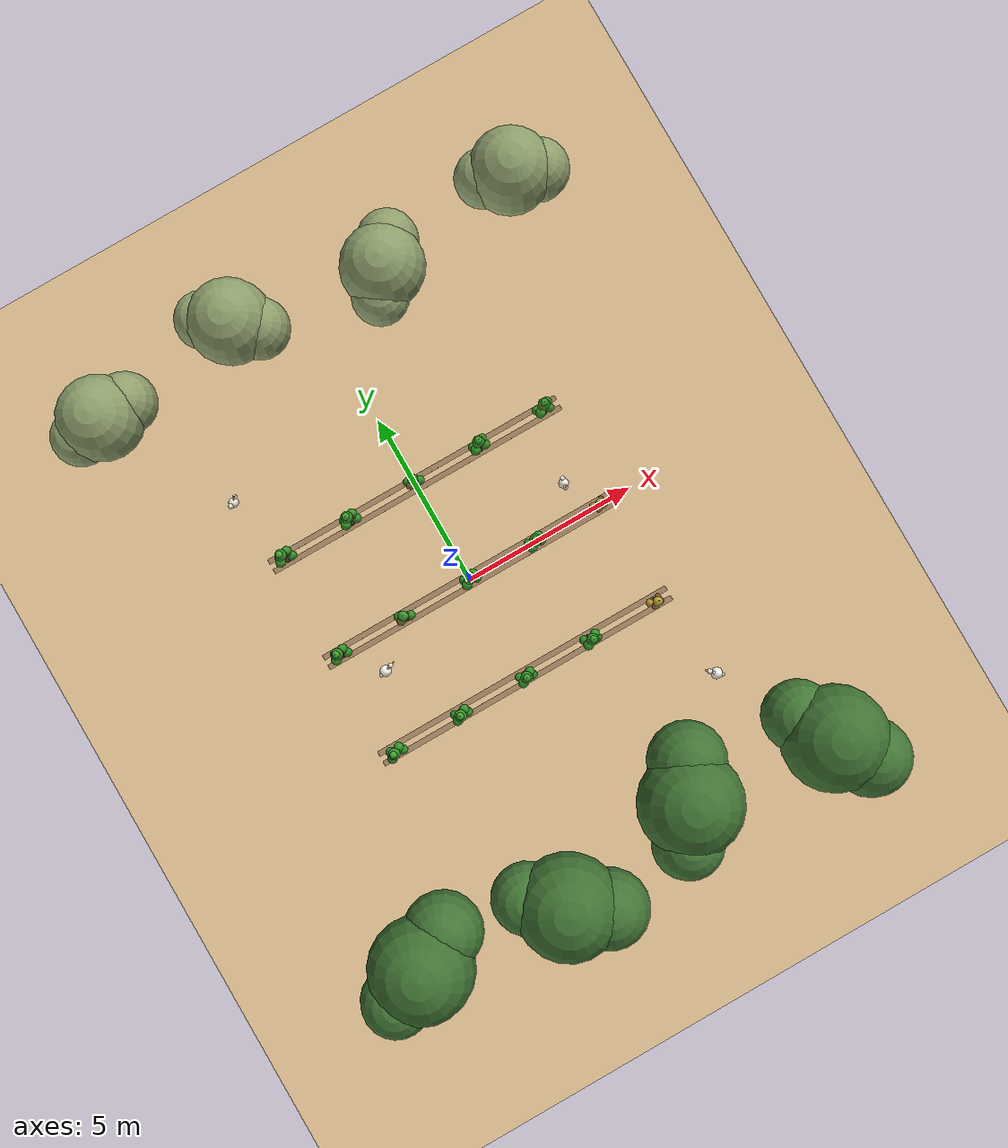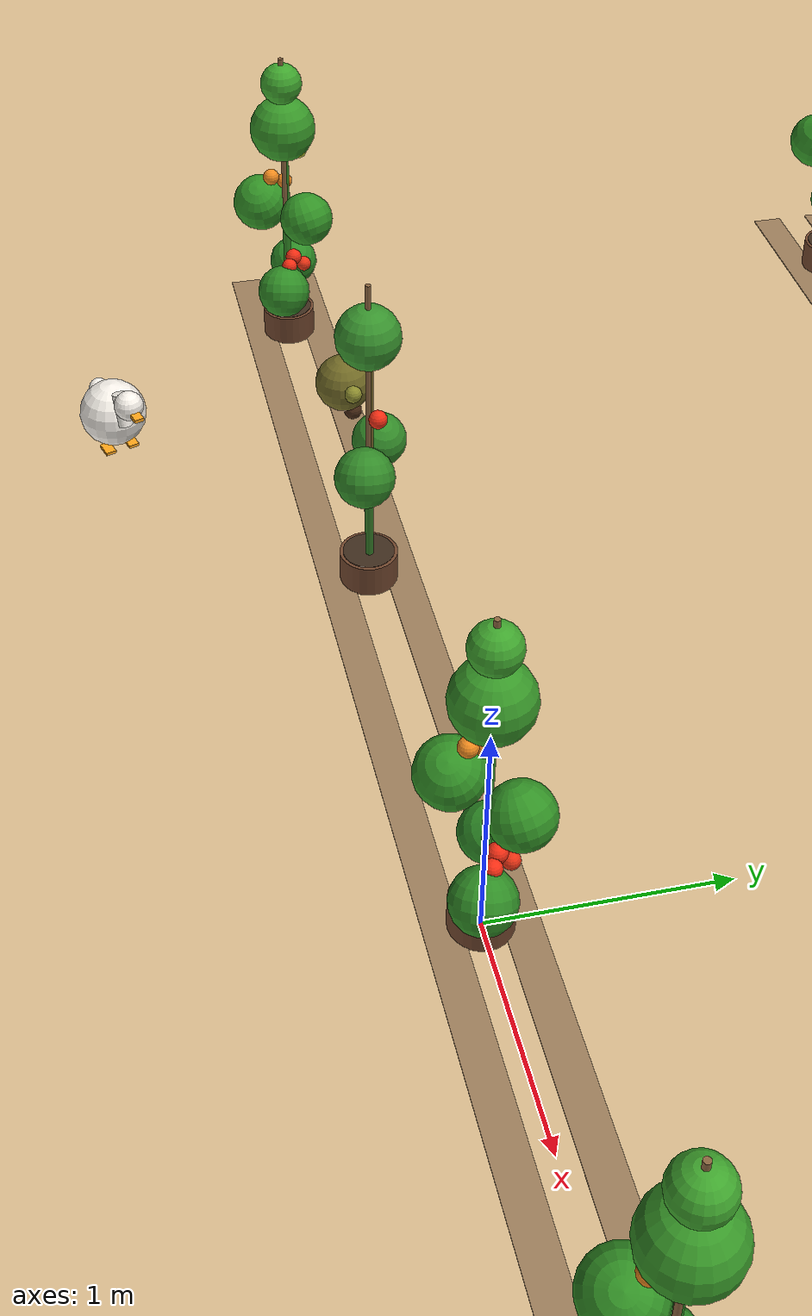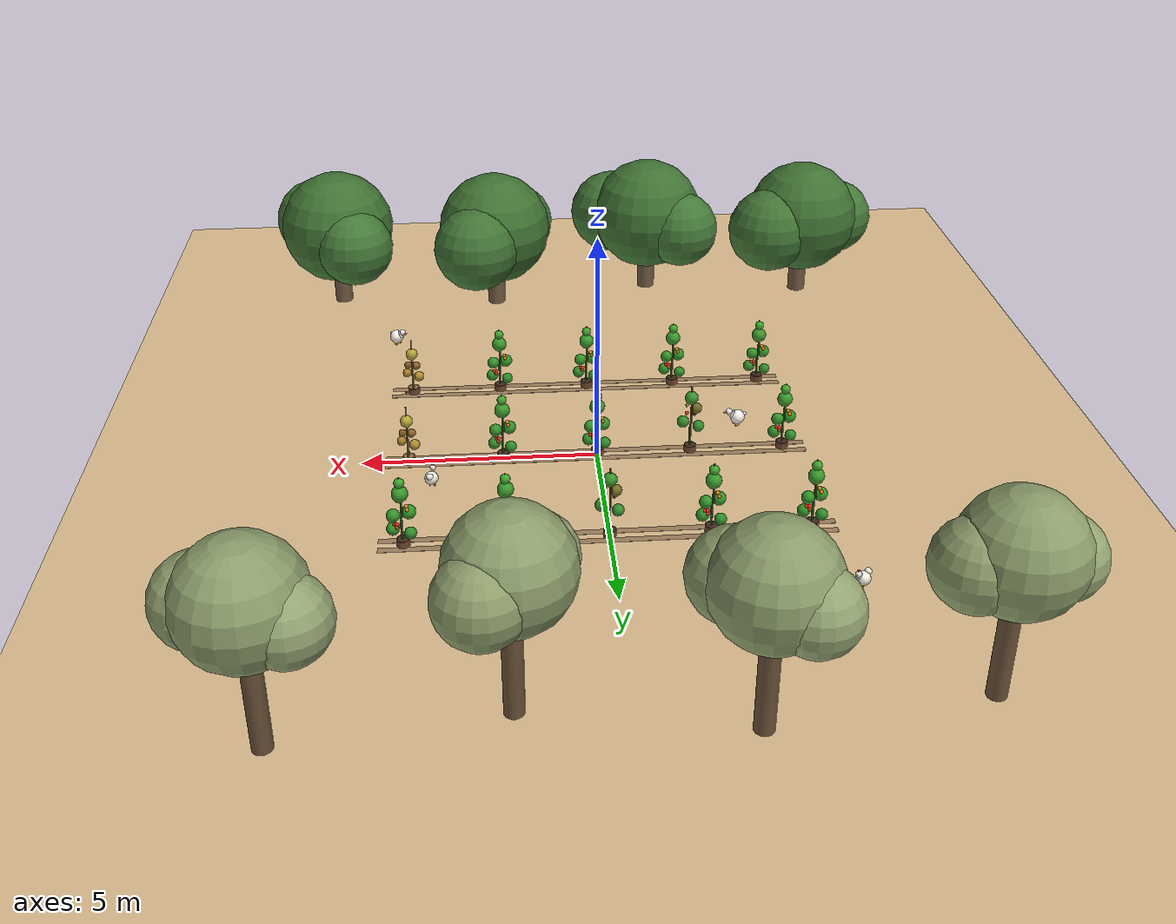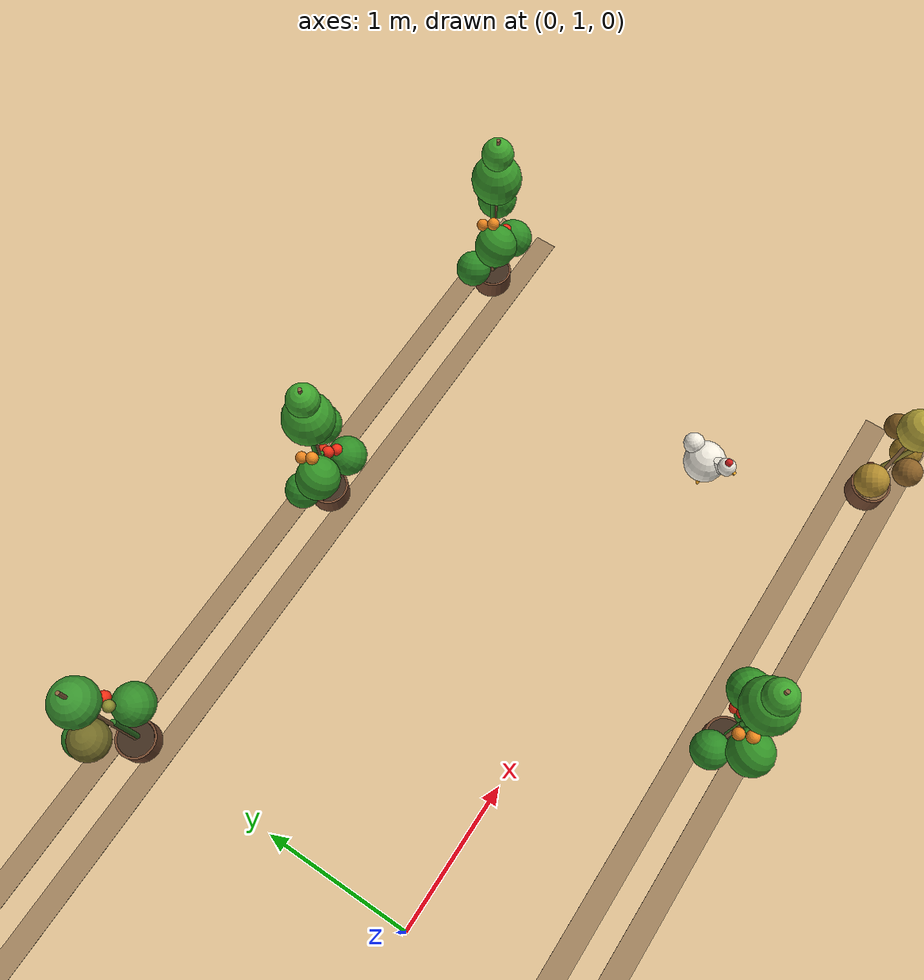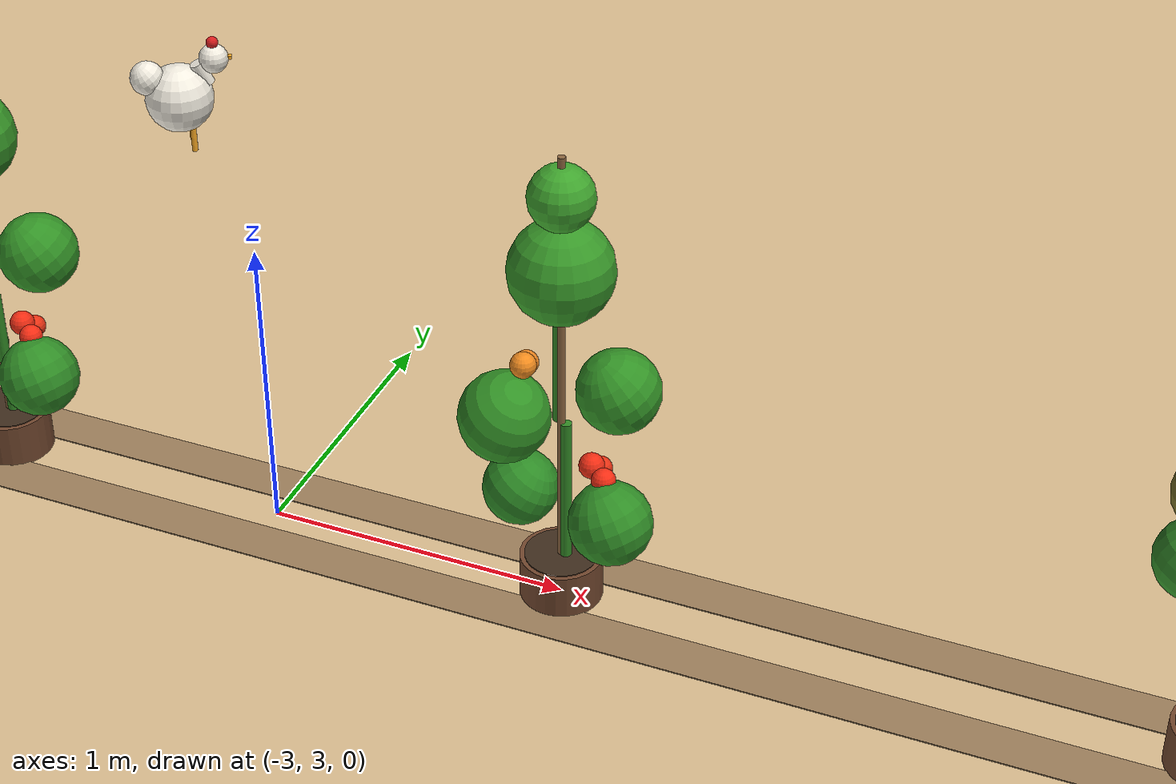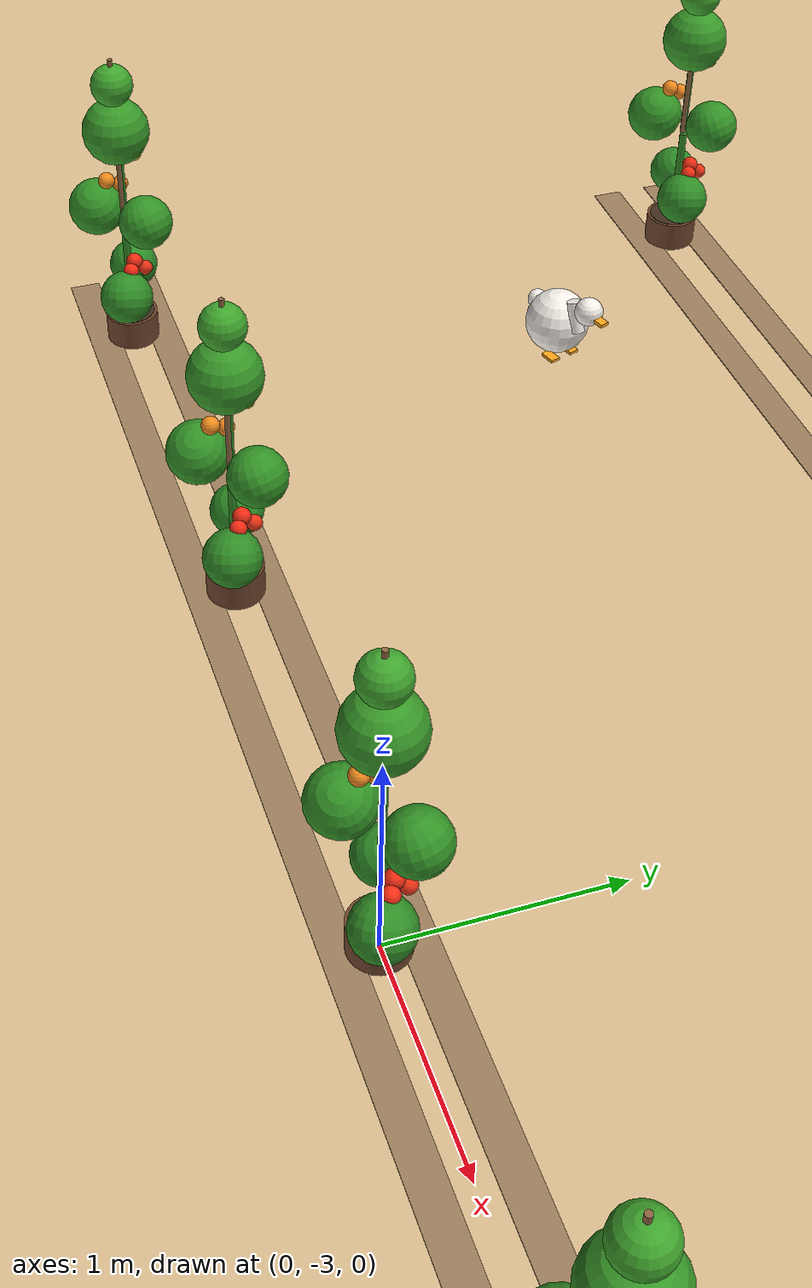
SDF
<?xml version="1.0"?>
<sdf version="1.10">
  <world name="greenhouse_2026">

    <gui fullscreen="0">
      <plugin filename="MinimalScene" name="3D View">
        <gz-gui>
          <title>3D View</title>
          <property type="bool" key="showTitleBar">false</property>
          <property type="string" key="state">docked</property>
        </gz-gui>
        <engine>ogre2</engine>
        <scene>scene</scene>
        <ambient_light>0.4 0.4 0.4</ambient_light>
        <background_color>0.8 0.8 0.8</background_color>
        <camera_pose>-6 0 6 0 0.5 0</camera_pose>
        <camera_clip><near>0.25</near><far>25000</far></camera_clip>
      </plugin>
      <plugin filename="GzSceneManager" name="Scene Manager">
        <gz-gui><property key="state" type="string">floating</property><property key="width" type="double">5</property><property key="height" type="double">5</property><property key="showTitleBar" type="bool">false</property></gz-gui>
      </plugin>
      <plugin filename="InteractiveViewControl" name="Interactive view control">
        <gz-gui><property key="state" type="string">floating</property><property key="width" type="double">5</property><property key="height" type="double">5</property><property key="showTitleBar" type="bool">false</property></gz-gui>
      </plugin>
      <plugin filename="CameraTracking" name="Camera Tracking">
        <gz-gui><property key="state" type="string">floating</property><property key="width" type="double">5</property><property key="height" type="double">5</property><property key="showTitleBar" type="bool">false</property></gz-gui>
      </plugin>
      <plugin filename="WorldControl" name="World control">
        <gz-gui>
          <title>World control</title>
          <property type="bool" key="showTitleBar">false</property>
          <property type="bool" key="resizable">false</property>
          <property type="double" key="height">72</property>
          <property type="double" key="width">121</property>
          <property type="string" key="state">floating</property>
          <anchors target="3D View"><line own="left" target="left"/><line own="bottom" target="bottom"/></anchors>
        </gz-gui>
        <play_pause>true</play_pause><step>true</step><start_paused>false</start_paused><use_event>true</use_event>
      </plugin>
      <plugin filename="WorldStats" name="World stats">
        <gz-gui>
          <title>World stats</title>
          <property type="bool" key="showTitleBar">false</property>
          <property type="bool" key="resizable">false</property>
          <property type="double" key="height">110</property>
          <property type="double" key="width">290</property>
          <property type="string" key="state">floating</property>
          <anchors target="3D View"><line own="right" target="right"/><line own="bottom" target="bottom"/></anchors>
        </gz-gui>
        <sim_time>true</sim_time><real_time>true</real_time><real_time_factor>true</real_time_factor><iterations>true</iterations><use_event>true</use_event>
      </plugin>
      <plugin filename="EntityContextMenuPlugin" name="Entity context menu">
        <gz-gui><property key="state" type="string">floating</property><property key="width" type="double">5</property><property key="height" type="double">5</property><property key="showTitleBar" type="bool">false</property></gz-gui>
      </plugin>
    </gui>

    <physics name="1ms" type="ignored">
      <max_step_size>0.001</max_step_size>
      <real_time_factor>1.0</real_time_factor>
    </physics>

    <plugin filename="gz-sim-physics-system" name="gz::sim::systems::Physics"/>
    <plugin filename="gz-sim-user-commands-system" name="gz::sim::systems::UserCommands"/>
    <plugin filename="gz-sim-scene-broadcaster-system" name="gz::sim::systems::SceneBroadcaster"/>
    <plugin filename="gz-sim-sensors-system" name="gz::sim::systems::Sensors">
      <render_engine>ogre2</render_engine>
    </plugin>

    <!-- ── Sfax atmosphere: bright sun, dust haze sky ──────────────── -->
    <scene>
      <ambient>0.60 0.55 0.45 1</ambient>
      <background>0.86 0.80 0.68 1</background>     <!-- dusty Mediterranean haze -->
      <shadows>true</shadows>
    </scene>

    <light type="directional" name="sun">
      <pose>0 0 12 0 0 0</pose>
      <diffuse>1.00 0.93 0.75 1</diffuse>           <!-- strong warm sun -->
      <specular>0.50 0.42 0.30 1</specular>
      <attenuation><range>1200</range><constant>0.85</constant><linear>0.01</linear></attenuation>
      <direction>-0.3 -0.4 -0.9</direction>
      <cast_shadows>true</cast_shadows>
    </light>

    <light type="directional" name="fill_light">
      <pose>0 0 8 0 0 0</pose>
      <diffuse>0.32 0.28 0.20 1</diffuse>
      <direction>0.4 0.3 -0.7</direction>
      <cast_shadows>false</cast_shadows>
    </light>

    <!-- ── "Harth" — sandy tilled soil, light ochre Sfax tone ──────── -->
    <model name="ground_plane">
      <static>true</static>
      <link name="link">
        <collision name="collision">
          <geometry><plane><normal>0 0 1</normal><size>200 200</size></plane></geometry>
        </collision>
        <visual name="visual">
          <geometry><plane><normal>0 0 1</normal><size>200 200</size></plane></geometry>
          <material>
            <ambient>0.70 0.58 0.42 1</ambient>
            <diffuse>0.86 0.74 0.56 1</diffuse>
            <specular>0.03 0.03 0.02 1</specular>
          </material>
        </visual>
      </link>
    </model>

    <!-- ── Subtle tilled-furrow stripes parallel to the tomato rows ─ -->
    <!-- Three darker thin strips just OFFSET from each plant row,    -->
    <!-- suggesting cultivated/tilled soil under the crops.            -->
    <model name="furrow_strips">
      <static>true</static>
      <link name="strip_row_0_north">
        <pose>0 -2.85 0.002 0 0 0</pose>
        <visual name="v"><geometry><box><size>9.0 0.15 0.004</size></box></geometry>
          <material><ambient>0.50 0.40 0.28 1</ambient><diffuse>0.62 0.50 0.36 1</diffuse></material>
        </visual>
      </link>
      <link name="strip_row_0_south">
        <pose>0 -3.15 0.002 0 0 0</pose>
        <visual name="v"><geometry><box><size>9.0 0.15 0.004</size></box></geometry>
          <material><ambient>0.50 0.40 0.28 1</ambient><diffuse>0.62 0.50 0.36 1</diffuse></material>
        </visual>
      </link>
      <link name="strip_row_1_north">
        <pose>0  0.15 0.002 0 0 0</pose>
        <visual name="v"><geometry><box><size>9.0 0.15 0.004</size></box></geometry>
          <material><ambient>0.50 0.40 0.28 1</ambient><diffuse>0.62 0.50 0.36 1</diffuse></material>
        </visual>
      </link>
      <link name="strip_row_1_south">
        <pose>0 -0.15 0.002 0 0 0</pose>
        <visual name="v"><geometry><box><size>9.0 0.15 0.004</size></box></geometry>
          <material><ambient>0.50 0.40 0.28 1</ambient><diffuse>0.62 0.50 0.36 1</diffuse></material>
        </visual>
      </link>
      <link name="strip_row_2_north">
        <pose>0  3.15 0.002 0 0 0</pose>
        <visual name="v"><geometry><box><size>9.0 0.15 0.004</size></box></geometry>
          <material><ambient>0.50 0.40 0.28 1</ambient><diffuse>0.62 0.50 0.36 1</diffuse></material>
        </visual>
      </link>
      <link name="strip_row_2_south">
        <pose>0  2.85 0.002 0 0 0</pose>
        <visual name="v"><geometry><box><size>9.0 0.15 0.004</size></box></geometry>
          <material><ambient>0.50 0.40 0.28 1</ambient><diffuse>0.62 0.50 0.36 1</diffuse></material>
        </visual>
      </link>
    </model>

    <!-- TOMATO ALLEY  — 3 rows × 5 plants                            -->
    <!-- Mix: 11 healthy / 2 wilted / 2 diseased — for VLA training   -->
    <!-- SPACING (chosen for navigability): rows 3 m apart (y=-3,0,+3) -->
    <!-- and plants 2 m apart along each row (x=-4..+4). This leaves   -->
    <!-- 1.5 m-clear DRIVE AISLES at y=±1.5 — a 0.67 m Husky has ~1.2 m -->
    <!-- margin, so simple reactive navigation works reliably. (The    -->
    <!-- earlier 1 m grid was too dense for anything but a planner.)   -->
    <!--   Row 0 (S, y=-3): H  H  H  H  W                              -->
    <!--   Row 1 (M, y= 0): H  D  H  H  W                              -->
    <!--   Row 2 (N, y=+3): H  H  D  H  H                              -->
    <!-- Row 0: y = -3.0 -->
    <include><name>tomato_0_0</name><pose>-4.0 -3.0 0 0 0 0</pose><uri>model://tomato_plant</uri></include>
    <include><name>tomato_0_1</name><pose>-2.0 -3.0 0 0 0 0</pose><uri>model://tomato_plant</uri></include>
    <include><name>tomato_0_2</name><pose> 0.0 -3.0 0 0 0 0</pose><uri>model://tomato_plant</uri></include>
    <include><name>tomato_0_3</name><pose> 2.0 -3.0 0 0 0 0</pose><uri>model://tomato_plant</uri></include>
    <include><name>tomato_0_4</name><pose> 4.0 -3.0 0 0 0 0</pose><uri>model://tomato_plant_wilted</uri></include>

    <!-- Row 1: y = 0.0 -->
    <include><name>tomato_1_0</name><pose>-4.0  0.0 0 0 0 0</pose><uri>model://tomato_plant</uri></include>
    <include><name>tomato_1_1</name><pose>-2.0  0.0 0 0 0 0</pose><uri>model://tomato_plant_diseased</uri></include>
    <include><name>tomato_1_2</name><pose> 0.0  0.0 0 0 0 0</pose><uri>model://tomato_plant</uri></include>
    <include><name>tomato_1_3</name><pose> 2.0  0.0 0 0 0 0</pose><uri>model://tomato_plant</uri></include>
    <include><name>tomato_1_4</name><pose> 4.0  0.0 0 0 0 0</pose><uri>model://tomato_plant_wilted</uri></include>

    <!-- Row 2: y = 3.0 -->
    <include><name>tomato_2_0</name><pose>-4.0  3.0 0 0 0 0</pose><uri>model://tomato_plant</uri></include>
    <include><name>tomato_2_1</name><pose>-2.0  3.0 0 0 0 0</pose><uri>model://tomato_plant</uri></include>
    <include><name>tomato_2_2</name><pose> 0.0  3.0 0 0 0 0</pose><uri>model://tomato_plant_diseased</uri></include>
    <include><name>tomato_2_3</name><pose> 2.0  3.0 0 0 0 0</pose><uri>model://tomato_plant</uri></include>
    <include><name>tomato_2_4</name><pose> 4.0  3.0 0 0 0 0</pose><uri>model://tomato_plant</uri></include>

    <!-- OLIVE GROVE — north side (Y = +8), 4 trees                  -->
    <include><name>olive_n1</name><pose>-6.0 8.0 0 0 0  0.3</pose><uri>model://olive_tree</uri></include>
    <include><name>olive_n2</name><pose>-2.0 8.5 0 0 0 -0.5</pose><uri>model://olive_tree</uri></include>
    <include><name>olive_n3</name><pose> 2.0 7.8 0 0 0  1.1</pose><uri>model://olive_tree</uri></include>
    <include><name>olive_n4</name><pose> 6.0 8.3 0 0 0 -0.2</pose><uri>model://olive_tree</uri></include>

    <!-- FIG GROVE — south side (Y = -8), 4 trees                    -->
    <include><name>fig_s1</name><pose>-6.0 -8.0 0 0 0  0.7</pose><uri>model://fig_tree</uri></include>
    <include><name>fig_s2</name><pose>-2.0 -8.5 0 0 0 -0.4</pose><uri>model://fig_tree</uri></include>
    <include><name>fig_s3</name><pose> 2.0 -7.8 0 0 0  1.3</pose><uri>model://fig_tree</uri></include>
    <include><name>fig_s4</name><pose> 6.0 -8.2 0 0 0 -0.8</pose><uri>model://fig_tree</uri></include>

    <!-- FREE-RANGE BIRDS — chickens + ducks foraging in the plot     -->
    <!--   Spread out so the Husky has to see them while traversing   -->
    <!-- Chickens (2) — one near olive grove, one in the alley -->
    <include><name>chicken_1</name><pose>-4.5  5.0 0 0 0  0.6</pose><uri>model://chicken</uri></include>
    <include><name>chicken_2</name><pose> 3.5  1.0 0 0 0 -1.8</pose><uri>model://chicken</uri></include>

    <!-- Ducks (2) — one near fig grove, one between rows 0 and 1 -->
    <include><name>duck_1</name><pose> 4.5 -5.5 0 0 0  2.4</pose><uri>model://duck</uri></include>
    <include><name>duck_2</name><pose>-3.2 -1.0 0 0 0  0.3</pose><uri>model://duck</uri></include>

  </world>
</sdf>

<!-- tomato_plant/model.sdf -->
<sdf version="1.10">
  <model name="tomato_plant">
    <static>true</static>

    <!-- ── Clay/plastic pot ────────────────────────────────────────── -->
    <link name="pot">
      <pose>0 0 0.075 0 0 0</pose>
      <visual name="v"><geometry><cylinder><radius>0.13</radius><length>0.15</length></cylinder></geometry>
        <material>
          <ambient>0.30 0.20 0.13 1</ambient>
          <diffuse>0.45 0.28 0.18 1</diffuse>
          <specular>0.10 0.05 0.03 1</specular>
        </material>
      </visual>
      <collision name="c"><geometry><cylinder><radius>0.13</radius><length>0.15</length></cylinder></geometry></collision>
    </link>

    <!-- Soil top in the pot -->
    <link name="pot_soil">
      <pose>0 0 0.148 0 0 0</pose>
      <visual name="v"><geometry><cylinder><radius>0.115</radius><length>0.01</length></cylinder></geometry>
        <material>
          <ambient>0.18 0.13 0.08 1</ambient>
          <diffuse>0.25 0.18 0.12 1</diffuse>
        </material>
      </visual>
    </link>

    <!-- ── Wooden support stake (the cane real tomato vines climb) ── -->
    <link name="stake">
      <pose>0 0 0.85 0 0 0</pose>
      <visual name="v"><geometry><cylinder><radius>0.012</radius><length>1.4</length></cylinder></geometry>
        <material>
          <ambient>0.35 0.25 0.15 1</ambient>
          <diffuse>0.55 0.40 0.25 1</diffuse>
        </material>
      </visual>
      <collision name="c"><geometry><cylinder><radius>0.012</radius><length>1.4</length></cylinder></geometry></collision>
    </link>

    <!-- ── Vine stem segments (slightly offset to suggest climbing) ── -->
    <link name="stem_lower">
      <pose>0.015 0 0.40 0 0 0</pose>
      <visual name="v"><geometry><cylinder><radius>0.018</radius><length>0.50</length></cylinder></geometry>
        <material><ambient>0.14 0.35 0.10 1</ambient><diffuse>0.20 0.55 0.15 1</diffuse></material>
      </visual>
    </link>
    <link name="stem_mid">
      <pose>-0.015 0.010 0.85 0 0 0</pose>
      <visual name="v"><geometry><cylinder><radius>0.016</radius><length>0.40</length></cylinder></geometry>
        <material><ambient>0.14 0.35 0.10 1</ambient><diffuse>0.20 0.55 0.15 1</diffuse></material>
      </visual>
    </link>
    <link name="stem_top">
      <pose>0.012 -0.010 1.20 0 0 0</pose>
      <visual name="v"><geometry><cylinder><radius>0.013</radius><length>0.30</length></cylinder></geometry>
        <material><ambient>0.16 0.40 0.12 1</ambient><diffuse>0.22 0.60 0.16 1</diffuse></material>
      </visual>
    </link>

    <!-- ── Leaf clusters at 4 heights (flattened spheres = ellipsoids) ─ -->
    <link name="leaves_low_l">
      <pose>-0.16 0.06 0.32 0 0.6 0.4</pose>
      <visual name="v"><geometry><sphere><radius>0.12</radius></sphere></geometry>
        <material><ambient>0.12 0.35 0.10 1</ambient><diffuse>0.18 0.55 0.15 1</diffuse></material>
      </visual>
    </link>
    <link name="leaves_low_r">
      <pose>0.18 -0.05 0.36 0 -0.5 -0.3</pose>
      <visual name="v"><geometry><sphere><radius>0.13</radius></sphere></geometry>
        <material><ambient>0.13 0.36 0.10 1</ambient><diffuse>0.19 0.56 0.15 1</diffuse></material>
      </visual>
    </link>
    <link name="leaves_mid_l">
      <pose>-0.14 -0.10 0.70 0 0.5 -0.4</pose>
      <visual name="v"><geometry><sphere><radius>0.14</radius></sphere></geometry>
        <material><ambient>0.13 0.38 0.10 1</ambient><diffuse>0.20 0.58 0.15 1</diffuse></material>
      </visual>
    </link>
    <link name="leaves_mid_r">
      <pose>0.15 0.08 0.75 0 -0.5 0.5</pose>
      <visual name="v"><geometry><sphere><radius>0.13</radius></sphere></geometry>
        <material><ambient>0.13 0.38 0.10 1</ambient><diffuse>0.20 0.58 0.15 1</diffuse></material>
      </visual>
    </link>
    <link name="leaves_high">
      <pose>0.00 0.00 1.18 0 0 0</pose>
      <visual name="v"><geometry><sphere><radius>0.16</radius></sphere></geometry>
        <material><ambient>0.14 0.40 0.11 1</ambient><diffuse>0.22 0.60 0.16 1</diffuse></material>
      </visual>
    </link>
    <link name="leaves_top">
      <pose>0.00 0.00 1.42 0 0 0</pose>
      <visual name="v"><geometry><sphere><radius>0.10</radius></sphere></geometry>
        <material><ambient>0.16 0.45 0.13 1</ambient><diffuse>0.25 0.65 0.18 1</diffuse></material>
      </visual>
    </link>

    <!-- ── Fruit cluster 1: lower (ripe red) ───────────────────────── -->
    <link name="fruit_r1a"><pose> 0.09 0.02 0.50 0 0 0</pose>
      <visual name="v"><geometry><sphere><radius>0.040</radius></sphere></geometry>
        <material><ambient>0.75 0.10 0.05 1</ambient><diffuse>0.95 0.18 0.08 1</diffuse><specular>0.5 0.1 0.1 1</specular></material>
      </visual>
      <collision name="c"><geometry><sphere><radius>0.040</radius></sphere></geometry></collision>
    </link>
    <link name="fruit_r1b"><pose> 0.14 -0.01 0.48 0 0 0</pose>
      <visual name="v"><geometry><sphere><radius>0.038</radius></sphere></geometry>
        <material><ambient>0.78 0.10 0.05 1</ambient><diffuse>0.97 0.18 0.08 1</diffuse><specular>0.5 0.1 0.1 1</specular></material>
      </visual>
      <collision name="c"><geometry><sphere><radius>0.038</radius></sphere></geometry></collision>
    </link>
    <link name="fruit_r1c"><pose> 0.10 0.07 0.46 0 0 0</pose>
      <visual name="v"><geometry><sphere><radius>0.036</radius></sphere></geometry>
        <material><ambient>0.72 0.12 0.05 1</ambient><diffuse>0.92 0.20 0.08 1</diffuse><specular>0.5 0.1 0.1 1</specular></material>
      </visual>
      <collision name="c"><geometry><sphere><radius>0.036</radius></sphere></geometry></collision>
    </link>

    <!-- ── Fruit cluster 2: middle (turning — orange) ──────────────── -->
    <link name="fruit_t1"><pose>-0.10 -0.05 0.86 0 0 0</pose>
      <visual name="v"><geometry><sphere><radius>0.040</radius></sphere></geometry>
        <material><ambient>0.78 0.40 0.08 1</ambient><diffuse>0.95 0.55 0.12 1</diffuse><specular>0.4 0.2 0.1 1</specular></material>
      </visual>
      <collision name="c"><geometry><sphere><radius>0.040</radius></sphere></geometry></collision>
    </link>
    <link name="fruit_t2"><pose>-0.12 0.02 0.82 0 0 0</pose>
      <visual name="v"><geometry><sphere><radius>0.038</radius></sphere></geometry>
        <material><ambient>0.75 0.38 0.08 1</ambient><diffuse>0.92 0.52 0.12 1</diffuse><specular>0.4 0.2 0.1 1</specular></material>
      </visual>
      <collision name="c"><geometry><sphere><radius>0.038</radius></sphere></geometry></collision>
    </link>

    <!-- ── Fruit cluster 3: upper (unripe — green-yellow) ──────────── -->
    <link name="fruit_u1"><pose> 0.09 -0.05 1.12 0 0 0</pose>
      <visual name="v"><geometry><sphere><radius>0.035</radius></sphere></geometry>
        <material><ambient>0.55 0.62 0.12 1</ambient><diffuse>0.72 0.78 0.20 1</diffuse><specular>0.2 0.2 0.1 1</specular></material>
      </visual>
      <collision name="c"><geometry><sphere><radius>0.035</radius></sphere></geometry></collision>
    </link>
    <link name="fruit_u2"><pose> 0.06 0.07 1.08 0 0 0</pose>
      <visual name="v"><geometry><sphere><radius>0.032</radius></sphere></geometry>
        <material><ambient>0.50 0.60 0.10 1</ambient><diffuse>0.68 0.76 0.18 1</diffuse><specular>0.2 0.2 0.1 1</specular></material>
      </visual>
      <collision name="c"><geometry><sphere><radius>0.032</radius></sphere></geometry></collision>
    </link>

    <!-- ── Yellow flowers (very top) — visual cue that the plant is still growing ─ -->
    <link name="flower_1"><pose>-0.06 0.04 1.36 0 0 0</pose>
      <visual name="v"><geometry><sphere><radius>0.012</radius></sphere></geometry>
        <material><ambient>0.92 0.78 0.15 1</ambient><diffuse>1.0 0.88 0.20 1</diffuse></material>
      </visual>
    </link>
    <link name="flower_2"><pose>0.05 -0.05 1.40 0 0 0</pose>
      <visual name="v"><geometry><sphere><radius>0.012</radius></sphere></geometry>
        <material><ambient>0.92 0.78 0.15 1</ambient><diffuse>1.0 0.88 0.20 1</diffuse></material>
      </visual>
    </link>

    <!-- ── Joints anchoring everything to the pot ──────────────────── -->
    <joint name="j_stake"   type="fixed"><parent>pot</parent><child>stake</child></joint>
    <joint name="j_soil"    type="fixed"><parent>pot</parent><child>pot_soil</child></joint>
    <joint name="j_stem_l"  type="fixed"><parent>stake</parent><child>stem_lower</child></joint>
    <joint name="j_stem_m"  type="fixed"><parent>stake</parent><child>stem_mid</child></joint>
    <joint name="j_stem_t"  type="fixed"><parent>stake</parent><child>stem_top</child></joint>
    <joint name="j_ll_l"    type="fixed"><parent>stake</parent><child>leaves_low_l</child></joint>
    <joint name="j_ll_r"    type="fixed"><parent>stake</parent><child>leaves_low_r</child></joint>
    <joint name="j_lm_l"    type="fixed"><parent>stake</parent><child>leaves_mid_l</child></joint>
    <joint name="j_lm_r"    type="fixed"><parent>stake</parent><child>leaves_mid_r</child></joint>
    <joint name="j_lh"      type="fixed"><parent>stake</parent><child>leaves_high</child></joint>
    <joint name="j_lt"      type="fixed"><parent>stake</parent><child>leaves_top</child></joint>
    <joint name="j_r1a"     type="fixed"><parent>stake</parent><child>fruit_r1a</child></joint>
    <joint name="j_r1b"     type="fixed"><parent>stake</parent><child>fruit_r1b</child></joint>
    <joint name="j_r1c"     type="fixed"><parent>stake</parent><child>fruit_r1c</child></joint>
    <joint name="j_t1"      type="fixed"><parent>stake</parent><child>fruit_t1</child></joint>
    <joint name="j_t2"      type="fixed"><parent>stake</parent><child>fruit_t2</child></joint>
    <joint name="j_u1"      type="fixed"><parent>stake</parent><child>fruit_u1</child></joint>
    <joint name="j_u2"      type="fixed"><parent>stake</parent><child>fruit_u2</child></joint>
    <joint name="j_f1"      type="fixed"><parent>stake</parent><child>flower_1</child></joint>
    <joint name="j_f2"      type="fixed"><parent>stake</parent><child>flower_2</child></joint>

  </model>
</sdf>

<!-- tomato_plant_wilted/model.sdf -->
<sdf version="1.10">
  <model name="tomato_plant_wilted">
    <static>true</static>

    <!-- Same pot + dry soil top -->
    <link name="pot">
      <pose>0 0 0.075 0 0 0</pose>
      <visual name="v"><geometry><cylinder><radius>0.13</radius><length>0.15</length></cylinder></geometry>
        <material><ambient>0.30 0.20 0.13 1</ambient><diffuse>0.45 0.28 0.18 1</diffuse></material>
      </visual>
      <collision name="c"><geometry><cylinder><radius>0.13</radius><length>0.15</length></cylinder></geometry></collision>
    </link>
    <link name="pot_soil">
      <pose>0 0 0.148 0 0 0</pose>
      <visual name="v"><geometry><cylinder><radius>0.115</radius><length>0.01</length></cylinder></geometry>
        <material><ambient>0.45 0.35 0.20 1</ambient><diffuse>0.55 0.42 0.25 1</diffuse></material>
      </visual>
    </link>

    <!-- Stake -->
    <link name="stake">
      <pose>0 0 0.75 0 0 0</pose>
      <visual name="v"><geometry><cylinder><radius>0.012</radius><length>1.2</length></cylinder></geometry>
        <material><ambient>0.35 0.25 0.15 1</ambient><diffuse>0.55 0.40 0.25 1</diffuse></material>
      </visual>
    </link>

    <!-- Brown/yellowing stem (smaller, broken) -->
    <link name="stem">
      <pose>0.015 0 0.50 0.20 0 0</pose>           <!-- tilted = drooping -->
      <visual name="v"><geometry><cylinder><radius>0.015</radius><length>0.75</length></cylinder></geometry>
        <material><ambient>0.45 0.40 0.15 1</ambient><diffuse>0.60 0.55 0.20 1</diffuse></material>
      </visual>
    </link>

    <!-- Drooping yellow-brown leaves (lower positions, hanging) -->
    <link name="leaf_droop_1">
      <pose>-0.14 0.04 0.45 1.0 0 0.3</pose>
      <visual name="v"><geometry><sphere><radius>0.11</radius></sphere></geometry>
        <material><ambient>0.55 0.42 0.12 1</ambient><diffuse>0.70 0.55 0.18 1</diffuse></material>
      </visual>
    </link>
    <link name="leaf_droop_2">
      <pose>0.13 -0.05 0.50 -0.9 0 -0.2</pose>
      <visual name="v"><geometry><sphere><radius>0.10</radius></sphere></geometry>
        <material><ambient>0.50 0.38 0.10 1</ambient><diffuse>0.65 0.50 0.15 1</diffuse></material>
      </visual>
    </link>
    <link name="leaf_brown_1">
      <pose>-0.08 -0.10 0.65 0.7 0 0</pose>
      <visual name="v"><geometry><sphere><radius>0.09</radius></sphere></geometry>
        <material><ambient>0.42 0.28 0.10 1</ambient><diffuse>0.55 0.38 0.15 1</diffuse></material>     <!-- brown -->
      </visual>
    </link>
    <link name="leaf_brown_2">
      <pose>0.09 0.10 0.78 0 0 0</pose>
      <visual name="v"><geometry><sphere><radius>0.08</radius></sphere></geometry>
        <material><ambient>0.38 0.25 0.08 1</ambient><diffuse>0.50 0.35 0.12 1</diffuse></material>
      </visual>
    </link>
    <link name="leaf_yellow_top">
      <pose>0.00 0.00 1.00 0 0 0</pose>
      <visual name="v"><geometry><sphere><radius>0.13</radius></sphere></geometry>
        <material><ambient>0.55 0.50 0.18 1</ambient><diffuse>0.72 0.65 0.22 1</diffuse></material>
      </visual>
    </link>

    <!-- One shriveled brown leftover fruit on the ground beside the pot -->
    <link name="dropped_fruit">
      <pose>0.18 0.05 0.04 0 0 0</pose>
      <visual name="v"><geometry><sphere><radius>0.030</radius></sphere></geometry>
        <material><ambient>0.30 0.15 0.08 1</ambient><diffuse>0.42 0.22 0.12 1</diffuse></material>
      </visual>
    </link>

    <joint name="j_stake" type="fixed"><parent>pot</parent><child>stake</child></joint>
    <joint name="j_soil"  type="fixed"><parent>pot</parent><child>pot_soil</child></joint>
    <joint name="j_stem"  type="fixed"><parent>stake</parent><child>stem</child></joint>
    <joint name="j_l1"    type="fixed"><parent>stake</parent><child>leaf_droop_1</child></joint>
    <joint name="j_l2"    type="fixed"><parent>stake</parent><child>leaf_droop_2</child></joint>
    <joint name="j_l3"    type="fixed"><parent>stake</parent><child>leaf_brown_1</child></joint>
    <joint name="j_l4"    type="fixed"><parent>stake</parent><child>leaf_brown_2</child></joint>
    <joint name="j_l5"    type="fixed"><parent>stake</parent><child>leaf_yellow_top</child></joint>
    <joint name="j_fr"    type="fixed"><parent>pot</parent><child>dropped_fruit</child></joint>
  </model>
</sdf>

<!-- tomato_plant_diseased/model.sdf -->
<sdf version="1.10">
  <model name="tomato_plant_diseased">
    <static>true</static>

    <link name="pot">
      <pose>0 0 0.075 0 0 0</pose>
      <visual name="v"><geometry><cylinder><radius>0.13</radius><length>0.15</length></cylinder></geometry>
        <material><ambient>0.30 0.20 0.13 1</ambient><diffuse>0.45 0.28 0.18 1</diffuse></material>
      </visual>
      <collision name="c"><geometry><cylinder><radius>0.13</radius><length>0.15</length></cylinder></geometry></collision>
    </link>
    <link name="pot_soil">
      <pose>0 0 0.148 0 0 0</pose>
      <visual name="v"><geometry><cylinder><radius>0.115</radius><length>0.01</length></cylinder></geometry>
        <material><ambient>0.18 0.13 0.08 1</ambient><diffuse>0.25 0.18 0.12 1</diffuse></material>
      </visual>
    </link>

    <link name="stake">
      <pose>0 0 0.85 0 0 0</pose>
      <visual name="v"><geometry><cylinder><radius>0.012</radius><length>1.4</length></cylinder></geometry>
        <material><ambient>0.35 0.25 0.15 1</ambient><diffuse>0.55 0.40 0.25 1</diffuse></material>
      </visual>
    </link>

    <!-- Stem (greener at base, brown at top — typical late blight progression) -->
    <link name="stem_lower">
      <pose>0.015 0 0.40 0 0 0</pose>
      <visual name="v"><geometry><cylinder><radius>0.018</radius><length>0.50</length></cylinder></geometry>
        <material><ambient>0.14 0.30 0.10 1</ambient><diffuse>0.20 0.48 0.15 1</diffuse></material>
      </visual>
    </link>
    <link name="stem_upper">
      <pose>-0.015 0.010 0.95 0 0 0</pose>
      <visual name="v"><geometry><cylinder><radius>0.015</radius><length>0.55</length></cylinder></geometry>
        <material><ambient>0.30 0.25 0.10 1</ambient><diffuse>0.45 0.38 0.15 1</diffuse></material>
      </visual>
    </link>

    <!-- Mostly green leaves with one brown patch — disease in progress -->
    <link name="leaves_healthy_l">
      <pose>-0.15 0.08 0.65 0 0.4 0.3</pose>
      <visual name="v"><geometry><sphere><radius>0.12</radius></sphere></geometry>
        <material><ambient>0.14 0.36 0.11 1</ambient><diffuse>0.20 0.55 0.16 1</diffuse></material>
      </visual>
    </link>
    <link name="leaves_healthy_r">
      <pose>0.16 -0.05 0.70 0 -0.4 -0.2</pose>
      <visual name="v"><geometry><sphere><radius>0.13</radius></sphere></geometry>
        <material><ambient>0.14 0.36 0.11 1</ambient><diffuse>0.20 0.55 0.16 1</diffuse></material>
      </visual>
    </link>
    <link name="leaves_blighted">
      <pose>-0.12 -0.08 1.00 0 0 0</pose>
      <visual name="v"><geometry><sphere><radius>0.12</radius></sphere></geometry>
        <material><ambient>0.30 0.32 0.10 1</ambient><diffuse>0.45 0.42 0.15 1</diffuse></material>     <!-- yellow-green -->
      </visual>
    </link>
    <link name="leaves_top">
      <pose>0.00 0.00 1.30 0 0 0</pose>
      <visual name="v"><geometry><sphere><radius>0.14</radius></sphere></geometry>
        <material><ambient>0.16 0.40 0.12 1</ambient><diffuse>0.22 0.58 0.18 1</diffuse></material>
      </visual>
    </link>

    <!-- Dark blight spots on the leaves (small dark spheres) -->
    <link name="spot_1"><pose>-0.12 0.10 0.66 0 0 0</pose>
      <visual name="v"><geometry><sphere><radius>0.020</radius></sphere></geometry>
        <material><ambient>0.10 0.06 0.04 1</ambient><diffuse>0.15 0.08 0.05 1</diffuse></material>
      </visual>
    </link>
    <link name="spot_2"><pose>-0.18 0.04 0.67 0 0 0</pose>
      <visual name="v"><geometry><sphere><radius>0.018</radius></sphere></geometry>
        <material><ambient>0.10 0.06 0.04 1</ambient><diffuse>0.15 0.08 0.05 1</diffuse></material>
      </visual>
    </link>
    <link name="spot_3"><pose>0.18 -0.04 0.71 0 0 0</pose>
      <visual name="v"><geometry><sphere><radius>0.022</radius></sphere></geometry>
        <material><ambient>0.10 0.06 0.04 1</ambient><diffuse>0.15 0.08 0.05 1</diffuse></material>
      </visual>
    </link>

    <!-- Aphid cluster (tiny yellowish dots on a leaf) — VLA target class "pest" -->
    <link name="aphid_a"><pose>0.13 -0.02 0.72 0 0 0</pose>
      <visual name="v"><geometry><sphere><radius>0.005</radius></sphere></geometry>
        <material><ambient>0.55 0.50 0.10 1</ambient><diffuse>0.75 0.68 0.15 1</diffuse></material>
      </visual>
    </link>
    <link name="aphid_b"><pose>0.14 -0.05 0.71 0 0 0</pose>
      <visual name="v"><geometry><sphere><radius>0.005</radius></sphere></geometry>
        <material><ambient>0.55 0.50 0.10 1</ambient><diffuse>0.75 0.68 0.15 1</diffuse></material>
      </visual>
    </link>
    <link name="aphid_c"><pose>0.15 -0.03 0.73 0 0 0</pose>
      <visual name="v"><geometry><sphere><radius>0.005</radius></sphere></geometry>
        <material><ambient>0.55 0.50 0.10 1</ambient><diffuse>0.75 0.68 0.15 1</diffuse></material>
      </visual>
    </link>
    <link name="aphid_d"><pose>0.155 -0.045 0.715 0 0 0</pose>
      <visual name="v"><geometry><sphere><radius>0.005</radius></sphere></geometry>
        <material><ambient>0.55 0.50 0.10 1</ambient><diffuse>0.75 0.68 0.15 1</diffuse></material>
      </visual>
    </link>

    <!-- A caterpillar resting on a leaf (small green elongated cylinder) -->
    <link name="caterpillar">
      <pose>-0.10 0.05 0.66 0 1.5708 0.3</pose>
      <visual name="v"><geometry><cylinder><radius>0.010</radius><length>0.05</length></cylinder></geometry>
        <material><ambient>0.40 0.55 0.12 1</ambient><diffuse>0.55 0.72 0.18 1</diffuse></material>
      </visual>
    </link>

    <!-- Fruits: 1 healthy red, 1 rotted/black, 1 unripe with blight -->
    <link name="fruit_healthy"><pose>0.10 0.02 0.95 0 0 0</pose>
      <visual name="v"><geometry><sphere><radius>0.040</radius></sphere></geometry>
        <material><ambient>0.75 0.10 0.05 1</ambient><diffuse>0.95 0.18 0.08 1</diffuse><specular>0.4 0.1 0.1 1</specular></material>
      </visual>
      <collision name="c"><geometry><sphere><radius>0.040</radius></sphere></geometry></collision>
    </link>
    <link name="fruit_rotted"><pose>-0.08 -0.05 0.88 0 0 0</pose>
      <visual name="v"><geometry><sphere><radius>0.038</radius></sphere></geometry>
        <material><ambient>0.18 0.10 0.05 1</ambient><diffuse>0.28 0.16 0.08 1</diffuse></material>           <!-- blackened rot -->
      </visual>
      <collision name="c"><geometry><sphere><radius>0.038</radius></sphere></geometry></collision>
    </link>
    <link name="fruit_blighted"><pose>0.08 -0.08 1.08 0 0 0</pose>
      <visual name="v"><geometry><sphere><radius>0.036</radius></sphere></geometry>
        <material><ambient>0.40 0.45 0.12 1</ambient><diffuse>0.55 0.55 0.18 1</diffuse></material>           <!-- sickly yellow-green -->
      </visual>
      <collision name="c"><geometry><sphere><radius>0.036</radius></sphere></geometry></collision>
    </link>

    <!-- Joints -->
    <joint name="j_stake" type="fixed"><parent>pot</parent><child>stake</child></joint>
    <joint name="j_soil"  type="fixed"><parent>pot</parent><child>pot_soil</child></joint>
    <joint name="j_sl"    type="fixed"><parent>stake</parent><child>stem_lower</child></joint>
    <joint name="j_su"    type="fixed"><parent>stake</parent><child>stem_upper</child></joint>
    <joint name="j_lh_l"  type="fixed"><parent>stake</parent><child>leaves_healthy_l</child></joint>
    <joint name="j_lh_r"  type="fixed"><parent>stake</parent><child>leaves_healthy_r</child></joint>
    <joint name="j_lb"    type="fixed"><parent>stake</parent><child>leaves_blighted</child></joint>
    <joint name="j_lt"    type="fixed"><parent>stake</parent><child>leaves_top</child></joint>
    <joint name="j_sp1"   type="fixed"><parent>stake</parent><child>spot_1</child></joint>
    <joint name="j_sp2"   type="fixed"><parent>stake</parent><child>spot_2</child></joint>
    <joint name="j_sp3"   type="fixed"><parent>stake</parent><child>spot_3</child></joint>
    <joint name="j_a1"    type="fixed"><parent>stake</parent><child>aphid_a</child></joint>
    <joint name="j_a2"    type="fixed"><parent>stake</parent><child>aphid_b</child></joint>
    <joint name="j_a3"    type="fixed"><parent>stake</parent><child>aphid_c</child></joint>
    <joint name="j_a4"    type="fixed"><parent>stake</parent><child>aphid_d</child></joint>
    <joint name="j_cat"   type="fixed"><parent>stake</parent><child>caterpillar</child></joint>
    <joint name="j_fh"    type="fixed"><parent>stake</parent><child>fruit_healthy</child></joint>
    <joint name="j_fr"    type="fixed"><parent>stake</parent><child>fruit_rotted</child></joint>
    <joint name="j_fb"    type="fixed"><parent>stake</parent><child>fruit_blighted</child></joint>
  </model>
</sdf>

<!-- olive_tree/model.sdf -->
<sdf version="1.10">
  <model name="olive_tree">
    <static>true</static>

    <!-- Trunk -->
    <link name="trunk">
      <pose>0 0 1.2 0 0 0</pose>
      <visual name="v"><geometry><cylinder><radius>0.18</radius><length>2.4</length></cylinder></geometry>
        <material>
          <ambient>0.28 0.22 0.16 1</ambient>
          <diffuse>0.42 0.32 0.22 1</diffuse>
          <specular>0.05 0.04 0.03 1</specular>
        </material>
      </visual>
      <collision name="c"><geometry><cylinder><radius>0.18</radius><length>2.4</length></cylinder></geometry></collision>
    </link>

    <!-- Canopy: 3 overlapping ellipsoid-like spheres in silvery-olive green -->
    <link name="canopy_main">
      <pose>0 0 2.9 0 0 0</pose>
      <visual name="v"><geometry><sphere><radius>1.1</radius></sphere></geometry>
        <material>
          <ambient>0.40 0.46 0.30 1</ambient>
          <diffuse>0.55 0.62 0.42 1</diffuse>
          <specular>0.08 0.08 0.08 1</specular>
        </material>
      </visual>
    </link>
    <link name="canopy_left">
      <pose>-0.7 0.1 2.7 0 0 0</pose>
      <visual name="v"><geometry><sphere><radius>0.75</radius></sphere></geometry>
        <material>
          <ambient>0.42 0.48 0.32 1</ambient>
          <diffuse>0.58 0.65 0.45 1</diffuse>
        </material>
      </visual>
    </link>
    <link name="canopy_right">
      <pose>0.7 -0.15 2.75 0 0 0</pose>
      <visual name="v"><geometry><sphere><radius>0.80</radius></sphere></geometry>
        <material>
          <ambient>0.40 0.46 0.30 1</ambient>
          <diffuse>0.56 0.62 0.42 1</diffuse>
        </material>
      </visual>
    </link>

    <joint name="j_main"  type="fixed"><parent>trunk</parent><child>canopy_main</child></joint>
    <joint name="j_left"  type="fixed"><parent>trunk</parent><child>canopy_left</child></joint>
    <joint name="j_right" type="fixed"><parent>trunk</parent><child>canopy_right</child></joint>
  </model>
</sdf>

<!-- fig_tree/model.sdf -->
<sdf version="1.10">
  <model name="fig_tree">
    <static>true</static>

    <!-- Lower trunk — thick, slightly knobby look (two cylinder segments) -->
    <link name="trunk_lower">
      <pose>0 0 0.40 0 0 0</pose>
      <visual name="v"><geometry><cylinder><radius>0.22</radius><length>0.80</length></cylinder></geometry>
        <material>
          <ambient>0.30 0.24 0.18 1</ambient>
          <diffuse>0.45 0.36 0.26 1</diffuse>
        </material>
      </visual>
      <collision name="c"><geometry><cylinder><radius>0.22</radius><length>0.80</length></cylinder></geometry></collision>
    </link>
    <link name="trunk_upper">
      <pose>0.05 0 1.15 0 0.10 0</pose>           <!-- slight tilt for character -->
      <visual name="v"><geometry><cylinder><radius>0.18</radius><length>0.70</length></cylinder></geometry>
        <material>
          <ambient>0.32 0.26 0.19 1</ambient>
          <diffuse>0.48 0.38 0.28 1</diffuse>
        </material>
      </visual>
    </link>

    <!-- Broad, low canopy — characteristic of figs (3 overlapping spheres) -->
    <link name="canopy_main">
      <pose>0 0 2.05 0 0 0</pose>
      <visual name="v"><geometry><sphere><radius>1.40</radius></sphere></geometry>
        <material>
          <ambient>0.18 0.32 0.15 1</ambient>     <!-- darker green than olive -->
          <diffuse>0.25 0.45 0.20 1</diffuse>
        </material>
      </visual>
    </link>
    <link name="canopy_left">
      <pose>-1.00 0.30 1.85 0 0 0</pose>
      <visual name="v"><geometry><sphere><radius>0.95</radius></sphere></geometry>
        <material>
          <ambient>0.20 0.34 0.16 1</ambient>
          <diffuse>0.27 0.48 0.22 1</diffuse>
        </material>
      </visual>
    </link>
    <link name="canopy_right">
      <pose>1.05 -0.20 1.90 0 0 0</pose>
      <visual name="v"><geometry><sphere><radius>1.05</radius></sphere></geometry>
        <material>
          <ambient>0.19 0.33 0.15 1</ambient>
          <diffuse>0.26 0.46 0.21 1</diffuse>
        </material>
      </visual>
    </link>

    <!-- A handful of figs (dark purple-burgundy) hanging on the canopy -->
    <link name="fig_1"><pose> 0.70 0.40 1.60 0 0 0</pose>
      <visual name="v"><geometry><sphere><radius>0.06</radius></sphere></geometry>
        <material><ambient>0.30 0.10 0.18 1</ambient><diffuse>0.45 0.15 0.25 1</diffuse><specular>0.2 0.1 0.15 1</specular></material>
      </visual>
    </link>
    <link name="fig_2"><pose>-0.50 0.60 1.70 0 0 0</pose>
      <visual name="v"><geometry><sphere><radius>0.055</radius></sphere></geometry>
        <material><ambient>0.32 0.10 0.20 1</ambient><diffuse>0.48 0.16 0.28 1</diffuse><specular>0.2 0.1 0.15 1</specular></material>
      </visual>
    </link>
    <link name="fig_3"><pose> 0.20 -0.55 1.55 0 0 0</pose>
      <visual name="v"><geometry><sphere><radius>0.05</radius></sphere></geometry>
        <material><ambient>0.30 0.10 0.18 1</ambient><diffuse>0.45 0.15 0.25 1</diffuse><specular>0.2 0.1 0.15 1</specular></material>
      </visual>
    </link>
    <link name="fig_4"><pose>-0.80 -0.30 1.65 0 0 0</pose>
      <visual name="v"><geometry><sphere><radius>0.055</radius></sphere></geometry>
        <material><ambient>0.28 0.09 0.17 1</ambient><diffuse>0.42 0.14 0.24 1</diffuse><specular>0.2 0.1 0.15 1</specular></material>
      </visual>
    </link>
    <link name="fig_5"><pose> 0.95 -0.45 1.75 0 0 0</pose>
      <visual name="v"><geometry><sphere><radius>0.05</radius></sphere></geometry>
        <material><ambient>0.32 0.10 0.20 1</ambient><diffuse>0.48 0.16 0.28 1</diffuse><specular>0.2 0.1 0.15 1</specular></material>
      </visual>
    </link>

    <joint name="j_trunk_u"  type="fixed"><parent>trunk_lower</parent><child>trunk_upper</child></joint>
    <joint name="j_main"     type="fixed"><parent>trunk_lower</parent><child>canopy_main</child></joint>
    <joint name="j_left"     type="fixed"><parent>trunk_lower</parent><child>canopy_left</child></joint>
    <joint name="j_right"    type="fixed"><parent>trunk_lower</parent><child>canopy_right</child></joint>
    <joint name="j_f1"       type="fixed"><parent>trunk_lower</parent><child>fig_1</child></joint>
    <joint name="j_f2"       type="fixed"><parent>trunk_lower</parent><child>fig_2</child></joint>
    <joint name="j_f3"       type="fixed"><parent>trunk_lower</parent><child>fig_3</child></joint>
    <joint name="j_f4"       type="fixed"><parent>trunk_lower</parent><child>fig_4</child></joint>
    <joint name="j_f5"       type="fixed"><parent>trunk_lower</parent><child>fig_5</child></joint>
  </model>
</sdf>

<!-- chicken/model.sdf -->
<sdf version="1.10">
  <model name="chicken">
    <static>true</static>

    <!-- Body (slightly squat egg shape) -->
    <link name="body">
      <pose>0 0 0.22 0 0 0</pose>
      <visual name="v"><geometry><sphere><radius>0.14</radius></sphere></geometry>
        <material><ambient>0.85 0.83 0.78 1</ambient><diffuse>0.95 0.93 0.88 1</diffuse><specular>0.05 0.05 0.05 1</specular></material>
      </visual>
      <collision name="c"><geometry><sphere><radius>0.14</radius></sphere></geometry></collision>
    </link>

    <!-- Tail (raised back lump) -->
    <link name="tail">
      <pose>-0.12 0 0.32 0 -0.5 0</pose>
      <visual name="v"><geometry><sphere><radius>0.07</radius></sphere></geometry>
        <material><ambient>0.85 0.83 0.78 1</ambient><diffuse>0.95 0.93 0.88 1</diffuse></material>
      </visual>
    </link>

    <!-- Neck + head -->
    <link name="neck">
      <pose>0.10 0 0.32 0 -0.4 0</pose>
      <visual name="v"><geometry><cylinder><radius>0.030</radius><length>0.10</length></cylinder></geometry>
        <material><ambient>0.85 0.83 0.78 1</ambient><diffuse>0.95 0.93 0.88 1</diffuse></material>
      </visual>
    </link>
    <link name="head">
      <pose>0.15 0 0.38 0 0 0</pose>
      <visual name="v"><geometry><sphere><radius>0.06</radius></sphere></geometry>
        <material><ambient>0.85 0.83 0.78 1</ambient><diffuse>0.95 0.93 0.88 1</diffuse></material>
      </visual>
    </link>

    <!-- Red comb -->
    <link name="comb">
      <pose>0.15 0 0.45 0 0 0</pose>
      <visual name="v"><geometry><sphere><radius>0.025</radius></sphere></geometry>
        <material><ambient>0.65 0.10 0.10 1</ambient><diffuse>0.85 0.12 0.12 1</diffuse></material>
      </visual>
    </link>

    <!-- Wattle (under beak) -->
    <link name="wattle">
      <pose>0.17 0 0.34 0 0 0</pose>
      <visual name="v"><geometry><sphere><radius>0.018</radius></sphere></geometry>
        <material><ambient>0.65 0.10 0.10 1</ambient><diffuse>0.85 0.12 0.12 1</diffuse></material>
      </visual>
    </link>

    <!-- Orange beak (cone-like via small box rotated) -->
    <link name="beak">
      <pose>0.20 0 0.38 0 0 0</pose>
      <visual name="v"><geometry><box><size>0.045 0.020 0.015</size></box></geometry>
        <material><ambient>0.85 0.55 0.10 1</ambient><diffuse>1.0 0.68 0.14 1</diffuse></material>
      </visual>
    </link>

    <!-- Eyes -->
    <link name="eye_l">
      <pose>0.175 0.040 0.395 0 0 0</pose>
      <visual name="v"><geometry><sphere><radius>0.008</radius></sphere></geometry>
        <material><ambient>0.05 0.05 0.05 1</ambient><diffuse>0.05 0.05 0.05 1</diffuse></material>
      </visual>
    </link>
    <link name="eye_r">
      <pose>0.175 -0.040 0.395 0 0 0</pose>
      <visual name="v"><geometry><sphere><radius>0.008</radius></sphere></geometry>
        <material><ambient>0.05 0.05 0.05 1</ambient><diffuse>0.05 0.05 0.05 1</diffuse></material>
      </visual>
    </link>

    <!-- Yellow legs -->
    <link name="leg_l">
      <pose>0.04 0.05 0.06 0 0 0</pose>
      <visual name="v"><geometry><cylinder><radius>0.012</radius><length>0.12</length></cylinder></geometry>
        <material><ambient>0.85 0.55 0.10 1</ambient><diffuse>1.0 0.68 0.14 1</diffuse></material>
      </visual>
    </link>
    <link name="leg_r">
      <pose>0.04 -0.05 0.06 0 0 0</pose>
      <visual name="v"><geometry><cylinder><radius>0.012</radius><length>0.12</length></cylinder></geometry>
        <material><ambient>0.85 0.55 0.10 1</ambient><diffuse>1.0 0.68 0.14 1</diffuse></material>
      </visual>
    </link>

    <joint name="j_tail"  type="fixed"><parent>body</parent><child>tail</child></joint>
    <joint name="j_neck"  type="fixed"><parent>body</parent><child>neck</child></joint>
    <joint name="j_head"  type="fixed"><parent>body</parent><child>head</child></joint>
    <joint name="j_comb"  type="fixed"><parent>body</parent><child>comb</child></joint>
    <joint name="j_watt"  type="fixed"><parent>body</parent><child>wattle</child></joint>
    <joint name="j_beak"  type="fixed"><parent>body</parent><child>beak</child></joint>
    <joint name="j_el"    type="fixed"><parent>body</parent><child>eye_l</child></joint>
    <joint name="j_er"    type="fixed"><parent>body</parent><child>eye_r</child></joint>
    <joint name="j_ll"    type="fixed"><parent>body</parent><child>leg_l</child></joint>
    <joint name="j_lr"    type="fixed"><parent>body</parent><child>leg_r</child></joint>
  </model>
</sdf>

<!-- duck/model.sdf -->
<sdf version="1.10">
  <model name="duck">
    <static>true</static>

    <!-- Body (longer, more elongated than chicken — use sphere; differs by head/bill) -->
    <link name="body">
      <pose>0 0 0.20 0 0 0</pose>
      <visual name="v"><geometry><sphere><radius>0.16</radius></sphere></geometry>
        <material><ambient>0.88 0.86 0.82 1</ambient><diffuse>0.97 0.95 0.92 1</diffuse><specular>0.05 0.05 0.05 1</specular></material>
      </visual>
      <collision name="c"><geometry><sphere><radius>0.16</radius></sphere></geometry></collision>
    </link>

    <!-- Tail tip (back, slightly up) -->
    <link name="tail">
      <pose>-0.16 0 0.24 0 -0.3 0</pose>
      <visual name="v"><geometry><sphere><radius>0.05</radius></sphere></geometry>
        <material><ambient>0.88 0.86 0.82 1</ambient><diffuse>0.97 0.95 0.92 1</diffuse></material>
      </visual>
    </link>

    <!-- Neck arched up + forward -->
    <link name="neck">
      <pose>0.13 0 0.30 0 -0.3 0</pose>
      <visual name="v"><geometry><cylinder><radius>0.035</radius><length>0.16</length></cylinder></geometry>
        <material><ambient>0.88 0.86 0.82 1</ambient><diffuse>0.97 0.95 0.92 1</diffuse></material>
      </visual>
    </link>
    <link name="head">
      <pose>0.22 0 0.38 0 0 0</pose>
      <visual name="v"><geometry><sphere><radius>0.07</radius></sphere></geometry>
        <material><ambient>0.88 0.86 0.82 1</ambient><diffuse>0.97 0.95 0.92 1</diffuse></material>
      </visual>
    </link>

    <!-- Flat orange duck bill (wider + flatter than chicken's beak) -->
    <link name="bill">
      <pose>0.30 0 0.37 0 0 0</pose>
      <visual name="v"><geometry><box><size>0.080 0.045 0.018</size></box></geometry>
        <material><ambient>0.90 0.50 0.05 1</ambient><diffuse>1.0 0.65 0.10 1</diffuse></material>
      </visual>
    </link>

    <!-- Eyes -->
    <link name="eye_l">
      <pose>0.245 0.050 0.40 0 0 0</pose>
      <visual name="v"><geometry><sphere><radius>0.008</radius></sphere></geometry>
        <material><ambient>0.05 0.05 0.05 1</ambient><diffuse>0.05 0.05 0.05 1</diffuse></material>
      </visual>
    </link>
    <link name="eye_r">
      <pose>0.245 -0.050 0.40 0 0 0</pose>
      <visual name="v"><geometry><sphere><radius>0.008</radius></sphere></geometry>
        <material><ambient>0.05 0.05 0.05 1</ambient><diffuse>0.05 0.05 0.05 1</diffuse></material>
      </visual>
    </link>

    <!-- Orange webbed feet (flatter than chicken legs) -->
    <link name="foot_l">
      <pose>0.04 0.06 0.025 0 0 0</pose>
      <visual name="v"><geometry><box><size>0.08 0.05 0.015</size></box></geometry>
        <material><ambient>0.90 0.50 0.05 1</ambient><diffuse>1.0 0.65 0.10 1</diffuse></material>
      </visual>
    </link>
    <link name="foot_r">
      <pose>0.04 -0.06 0.025 0 0 0</pose>
      <visual name="v"><geometry><box><size>0.08 0.05 0.015</size></box></geometry>
        <material><ambient>0.90 0.50 0.05 1</ambient><diffuse>1.0 0.65 0.10 1</diffuse></material>
      </visual>
    </link>

    <joint name="j_tail"  type="fixed"><parent>body</parent><child>tail</child></joint>
    <joint name="j_neck"  type="fixed"><parent>body</parent><child>neck</child></joint>
    <joint name="j_head"  type="fixed"><parent>body</parent><child>head</child></joint>
    <joint name="j_bill"  type="fixed"><parent>body</parent><child>bill</child></joint>
    <joint name="j_el"    type="fixed"><parent>body</parent><child>eye_l</child></joint>
    <joint name="j_er"    type="fixed"><parent>body</parent><child>eye_r</child></joint>
    <joint name="j_fl"    type="fixed"><parent>body</parent><child>foot_l</child></joint>
    <joint name="j_fr"    type="fixed"><parent>body</parent><child>foot_r</child></joint>
  </model>
</sdf>
